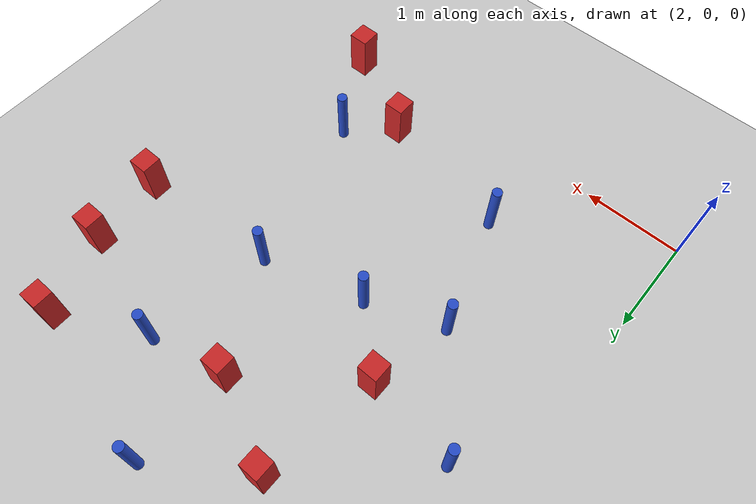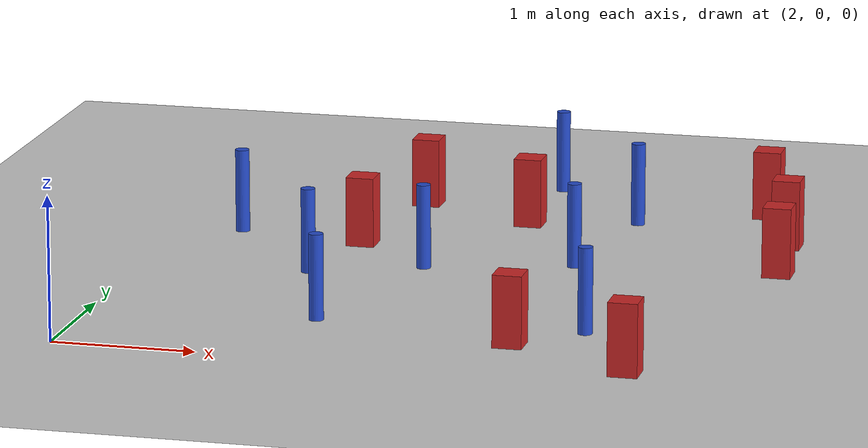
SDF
<sdf version="1.6">
 <world name="default">
  <model name="ground_plane">
   <static>1</static>
   <link name="link">
    <collision name="collision">
     <geometry><plane><normal>0 0 1</normal><size>100 100</size></plane></geometry>
     <surface><friction><ode><mu>100</mu><mu2>50</mu2></ode></friction></surface>
    </collision>
    <visual name="visual">
     <cast_shadows>0</cast_shadows>
     <geometry><plane><normal>0 0 1</normal><size>100 100</size></plane></geometry>
     <material>
      <script><uri>file://media/materials/scripts/gazebo.material</uri><name>Gazebo/Grey</name></script>
     </material>
    </visual>
   </link>
  </model>
  <model name="pole_obstacle7">
   <static>0</static>
   <link name="link">
    <pose>0 0 0.3 0 -0 0</pose>
    <inertial>
     <mass>1</mass>
     <inertia><ixx>0.145833</ixx><ixy>0</ixy><ixz>0</ixz><iyy>0.145833</iyy><iyz>0</iyz><izz>0.125</izz></inertia>
    </inertial>
    <collision name="collision">
     <geometry><cylinder><radius>0.05</radius><length>0.6</length></cylinder></geometry>
    </collision>
    <visual name="visual">
     <geometry><cylinder><radius>0.05</radius><length>0.6</length></cylinder></geometry>
     <material>
      <script><name>Gazebo/Blue</name><uri>file://media/materials/scripts/gazebo.material</uri></script>
     </material>
    </visual>
   </link>
   <pose>2.45431 3.07016 -5e-06 0 0 -1.7e-05</pose>
  </model>
  <model name="pole_obstacle12">
   <static>0</static>
   <link name="link">
    <pose>0 0 0.3 0 -0 0</pose>
    <inertial>
     <mass>1</mass>
     <inertia><ixx>0.145833</ixx><ixy>0</ixy><ixz>0</ixz><iyy>0.145833</iyy><iyz>0</iyz><izz>0.125</izz></inertia>
    </inertial>
    <collision name="collision">
     <geometry><cylinder><radius>0.05</radius><length>0.6</length></cylinder></geometry>
    </collision>
    <visual name="visual">
     <geometry><cylinder><radius>0.05</radius><length>0.6</length></cylinder></geometry>
     <material>
      <script><name>Gazebo/Blue</name><uri>file://media/materials/scripts/gazebo.material</uri></script>
     </material>
    </visual>
   </link>
   <pose>3.95517 2.39756 -5e-06 0 -0 1.1e-05</pose>
  </model>
  <model name="square_post_obstacle16">
   <static>0</static>
   <link name="link">
    <pose>0 0 0.25 0 -0 0</pose>
    <inertial>
     <mass>100</mass>
     <inertia>
      <ixx>0.166667</ixx>
      <ixy>0</ixy>
      <ixz>0</ixz>
      <iyy>0.166667</iyy>
      <iyz>0</iyz>
      <izz>0.166667</izz>
     </inertia>
    </inertial>
    <collision name="collision"><geometry><box><size>0.2 0.2 0.5</size></box></geometry></collision>
    <visual name="visual">
     <geometry><box><size>0.2 0.2 0.5</size></box></geometry>
     <material>
      <script><name>Gazebo/Red</name><uri>file://media/materials/scripts/gazebo.material</uri></script>
     </material>
    </visual>
   </link>
   <pose>6.39479 2.78555 0 -1e-06 7e-06 -0.000607</pose>
  </model>
  <model name="pole_obstacle20">
   <static>0</static>
   <link name="link">
    <pose>0 0 0.3 0 -0 0</pose>
    <inertial>
     <mass>1</mass>
     <inertia><ixx>0.145833</ixx><ixy>0</ixy><ixz>0</ixz><iyy>0.145833</iyy><iyz>0</iyz><izz>0.125</izz></inertia>
    </inertial>
    <collision name="collision">
     <geometry><cylinder><radius>0.05</radius><length>0.6</length></cylinder></geometry>
    </collision>
    <visual name="visual">
     <geometry><cylinder><radius>0.05</radius><length>0.6</length></cylinder></geometry>
     <material>
      <script><name>Gazebo/Blue</name><uri>file://media/materials/scripts/gazebo.material</uri></script>
     </material>
    </visual>
   </link>
   <pose>3.57013 0.94303 -5e-06 0 -0 1e-06</pose>
  </model>
  <model name="pole_obstacle28">
   <static>0</static>
   <link name="link">
    <pose>0 0 0.3 0 -0 0</pose>
    <inertial>
     <mass>1</mass>
     <inertia><ixx>0.145833</ixx><ixy>0</ixy><ixz>0</ixz><iyy>0.145833</iyy><iyz>0</iyz><izz>0.125</izz></inertia>
    </inertial>
    <collision name="collision">
     <geometry><cylinder><radius>0.05</radius><length>0.6</length></cylinder></geometry>
    </collision>
    <visual name="visual">
     <geometry><cylinder><radius>0.05</radius><length>0.6</length></cylinder></geometry>
     <material>
      <script><name>Gazebo/Blue</name><uri>file://media/materials/scripts/gazebo.material</uri></script>
     </material>
    </visual>
   </link>
   <pose>4.97068 2.67329 -5e-06 0 -0 8e-06</pose>
  </model>
  <model name="square_post_obstacle40">
   <static>0</static>
   <link name="link">
    <pose>0 0 0.25 0 -0 0</pose>
    <inertial>
     <mass>100</mass>
     <inertia>
      <ixx>0.166667</ixx>
      <ixy>0</ixy>
      <ixz>0</ixz>
      <iyy>0.166667</iyy>
      <iyz>0</iyz>
      <izz>0.166667</izz>
     </inertia>
    </inertial>
    <collision name="collision"><geometry><box><size>0.2 0.2 0.5</size></box></geometry></collision>
    <visual name="visual">
     <geometry><box><size>0.2 0.2 0.5</size></box></geometry>
     <material>
      <script><name>Gazebo/Red</name><uri>file://media/materials/scripts/gazebo.material</uri></script>
     </material>
    </visual>
   </link>
   <pose>3.56815 4.13191 0 -1e-06 7e-06 -0.000607</pose>
  </model>
  <model name="square_post_obstacle48">
   <static>0</static>
   <link name="link">
    <pose>0 0 0.25 0 -0 0</pose>
    <inertial>
     <mass>100</mass>
     <inertia>
      <ixx>0.166667</ixx>
      <ixy>0</ixy>
      <ixz>0</ixz>
      <iyy>0.166667</iyy>
      <iyz>0</iyz>
      <izz>0.166667</izz>
     </inertia>
    </inertial>
    <collision name="collision"><geometry><box><size>0.2 0.2 0.5</size></box></geometry></collision>
    <visual name="visual">
     <geometry><box><size>0.2 0.2 0.5</size></box></geometry>
     <material>
      <script><name>Gazebo/Red</name><uri>file://media/materials/scripts/gazebo.material</uri></script>
     </material>
    </visual>
   </link>
   <pose>6.32708 3.54568 0 -1e-06 7e-06 -0.000607</pose>
  </model>
  <model name="pole_obstacle59">
   <static>0</static>
   <link name="link">
    <pose>0 0 0.3 0 -0 0</pose>
    <inertial>
     <mass>1</mass>
     <inertia><ixx>0.145833</ixx><ixy>0</ixy><ixz>0</ixz><iyy>0.145833</iyy><iyz>0</iyz><izz>0.125</izz></inertia>
    </inertial>
    <collision name="collision">
     <geometry><cylinder><radius>0.05</radius><length>0.6</length></cylinder></geometry>
    </collision>
    <visual name="visual">
     <geometry><cylinder><radius>0.05</radius><length>0.6</length></cylinder></geometry>
     <material>
      <script><name>Gazebo/Blue</name><uri>file://media/materials/scripts/gazebo.material</uri></script>
     </material>
    </visual>
   </link>
   <pose>5.17397 3.91084 -5e-06 0 0 -3e-06</pose>
  </model>
  <model name="pole_obstacle66">
   <static>0</static>
   <link name="link">
    <pose>0 0 0.3 0 -0 0</pose>
    <inertial>
     <mass>1</mass>
     <inertia><ixx>0.145833</ixx><ixy>0</ixy><ixz>0</ixz><iyy>0.145833</iyy><iyz>0</iyz><izz>0.125</izz></inertia>
    </inertial>
    <collision name="collision">
     <geometry><cylinder><radius>0.05</radius><length>0.6</length></cylinder></geometry>
    </collision>
    <visual name="visual">
     <geometry><cylinder><radius>0.05</radius><length>0.6</length></cylinder></geometry>
     <material>
      <script><name>Gazebo/Blue</name><uri>file://media/materials/scripts/gazebo.material</uri></script>
     </material>
    </visual>
   </link>
   <pose>5.39848 1.03562 -5e-06 0 -0 2.2e-05</pose>
  </model>
  <model name="square_post_obstacle63">
   <static>0</static>
   <link name="link">
    <pose>0 0 0.25 0 -0 0</pose>
    <inertial>
     <mass>100</mass>
     <inertia>
      <ixx>0.166667</ixx>
      <ixy>0</ixy>
      <ixz>0</ixz>
      <iyy>0.166667</iyy>
      <iyz>0</iyz>
      <izz>0.166667</izz>
     </inertia>
    </inertial>
    <collision name="collision"><geometry><box><size>0.2 0.2 0.5</size></box></geometry></collision>
    <visual name="visual">
     <geometry><box><size>0.2 0.2 0.5</size></box></geometry>
     <material>
      <script><name>Gazebo/Red</name><uri>file://media/materials/scripts/gazebo.material</uri></script>
     </material>
    </visual>
   </link>
   <pose>4.4172 3.73209 0 -1e-06 7e-06 -0.000607</pose>
  </model>
  <model name="square_post_obstacle67">
   <static>0</static>
   <link name="link">
    <pose>0 0 0.25 0 -0 0</pose>
    <inertial>
     <mass>100</mass>
     <inertia>
      <ixx>0.166667</ixx>
      <ixy>0</ixy>
      <ixz>0</ixz>
      <iyy>0.166667</iyy>
      <iyz>0</iyz>
      <izz>0.166667</izz>
     </inertia>
    </inertial>
    <collision name="collision"><geometry><box><size>0.2 0.2 0.5</size></box></geometry></collision>
    <visual name="visual">
     <geometry><box><size>0.2 0.2 0.5</size></box></geometry>
     <material>
      <script><name>Gazebo/Red</name><uri>file://media/materials/scripts/gazebo.material</uri></script>
     </material>
    </visual>
   </link>
   <pose>4.97189 0.650875 0 -6e-06 -0 -4e-05</pose>
  </model>
  <model name="square_post_obstacle91">
   <static>0</static>
   <link name="link">
    <pose>0 0 0.25 0 -0 0</pose>
    <inertial>
     <mass>100</mass>
     <inertia>
      <ixx>0.166667</ixx>
      <ixy>0</ixy>
      <ixz>0</ixz>
      <iyy>0.166667</iyy>
      <iyz>0</iyz>
      <izz>0.166667</izz>
     </inertia>
    </inertial>
    <collision name="collision"><geometry><box><size>0.2 0.2 0.5</size></box></geometry></collision>
    <visual name="visual">
     <geometry><box><size>0.2 0.2 0.5</size></box></geometry>
     <material>
      <script><name>Gazebo/Red</name><uri>file://media/materials/scripts/gazebo.material</uri></script>
     </material>
    </visual>
   </link>
   <pose>6.05166 4.34294 0 -1e-06 7e-06 -0.000607</pose>
  </model>
  <model name="pole_obstacle88">
   <static>0</static>
   <link name="link">
    <pose>0 0 0.3 0 -0 0</pose>
    <inertial>
     <mass>1</mass>
     <inertia><ixx>0.145833</ixx><ixy>0</ixy><ixz>0</ixz><iyy>0.145833</iyy><iyz>0</iyz><izz>0.125</izz></inertia>
    </inertial>
    <collision name="collision">
     <geometry><cylinder><radius>0.05</radius><length>0.6</length></cylinder></geometry>
    </collision>
    <visual name="visual">
     <geometry><cylinder><radius>0.05</radius><length>0.6</length></cylinder></geometry>
     <material>
      <script><name>Gazebo/Blue</name><uri>file://media/materials/scripts/gazebo.material</uri></script>
     </material>
    </visual>
   </link>
   <pose>3.20165 2.10429 -5e-06 0 0 -4e-05</pose>
  </model>
  <model name="square_post_obstacle105">
   <static>0</static>
   <link name="link">
    <pose>0 0 0.25 0 -0 0</pose>
    <inertial>
     <mass>100</mass>
     <inertia>
      <ixx>0.166667</ixx>
      <ixy>0</ixy>
      <ixz>0</ixz>
      <iyy>0.166667</iyy>
      <iyz>0</iyz>
      <izz>0.166667</izz>
     </inertia>
    </inertial>
    <collision name="collision"><geometry><box><size>0.2 0.2 0.5</size></box></geometry></collision>
    <visual name="visual">
     <geometry><box><size>0.2 0.2 0.5</size></box></geometry>
     <material>
      <script><name>Gazebo/Red</name><uri>file://media/materials/scripts/gazebo.material</uri></script>
     </material>
    </visual>
   </link>
   <pose>3.38088 2.92859 0 -1e-06 7e-06 -0.000607</pose>
  </model>
  <model name="pole_obstacle105">
   <static>0</static>
   <link name="link">
    <pose>0 0 0.3 0 -0 0</pose>
    <inertial>
     <mass>1</mass>
     <inertia><ixx>0.145833</ixx><ixy>0</ixy><ixz>0</ixz><iyy>0.145833</iyy><iyz>0</iyz><izz>0.125</izz></inertia>
    </inertial>
    <collision name="collision">
     <geometry><cylinder><radius>0.05</radius><length>0.6</length></cylinder></geometry>
    </collision>
    <visual name="visual">
     <geometry><cylinder><radius>0.05</radius><length>0.6</length></cylinder></geometry>
     <material>
      <script><name>Gazebo/Blue</name><uri>file://media/materials/scripts/gazebo.material</uri></script>
     </material>
    </visual>
   </link>
   <pose>4.44313 4.74041 -5e-06 0 0 -6.6e-05</pose>
  </model>
  <model name="square_post_obstacle125">
   <static>0</static>
   <link name="link">
    <pose>0 0 0.25 0 -0 0</pose>
    <inertial>
     <mass>100</mass>
     <inertia>
      <ixx>0.166667</ixx>
      <ixy>0</ixy>
      <ixz>0</ixz>
      <iyy>0.166667</iyy>
      <iyz>0</iyz>
      <izz>0.166667</izz>
     </inertia>
    </inertial>
    <collision name="collision"><geometry><box><size>0.2 0.2 0.5</size></box></geometry></collision>
    <visual name="visual">
     <geometry><box><size>0.2 0.2 0.5</size></box></geometry>
     <material>
      <script><name>Gazebo/Red</name><uri>file://media/materials/scripts/gazebo.material</uri></script>
     </material>
    </visual>
   </link>
   <pose>5.84558 0.1795 0 -1e-06 7e-06 -0.000607</pose>
  </model>
 </world>
</sdf>
